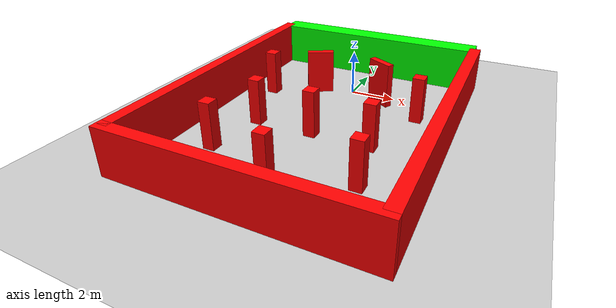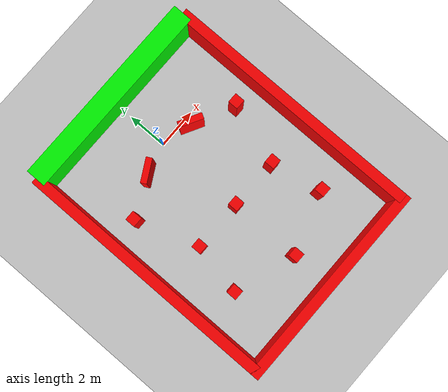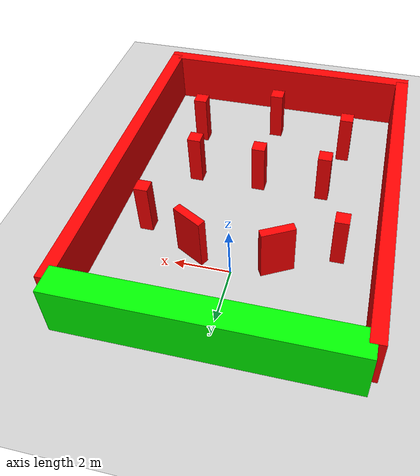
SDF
<?xml version="1.0" ?>
<sdf version="1.8">
  <world name="winteros_world">

    <physics name="1ms" type="ignored">
      <max_step_size>0.001</max_step_size>
      <real_time_factor>1.0</real_time_factor>
    </physics>

    <plugin filename="gz-sim-physics-system" name="gz::sim::systems::Physics" />
    <plugin filename="gz-sim-user-commands-system" name="gz::sim::systems::UserCommands" />
    <plugin filename="gz-sim-scene-broadcaster-system" name="gz::sim::systems::SceneBroadcaster" />
    <plugin filename="gz-sim-sensors-system" name="gz::sim::systems::Sensors">
      <render_engine>ogre2</render_engine>
    </plugin>

    <light type="directional" name="sun">
      <cast_shadows>true</cast_shadows>
      <pose>0 0 10 0 0 0</pose>
      <diffuse>0.8 0.8 0.8 1</diffuse>
      <specular>0.2 0.2 0.2 1</specular>
      <direction>-0.5 0.1 -0.9</direction>
    </light>

    <model name="ground_plane">
      <static>true</static>
      <link name="link">
        <collision name="collision">
          <geometry><plane><normal>0 0 1</normal><size>100 100</size></plane></geometry>
        </collision>
        <visual name="visual">
          <geometry><plane><normal>0 0 1</normal><size>100 100</size></plane></geometry>
          <material><ambient>0.8 0.8 0.8 1</ambient><diffuse>0.8 0.8 0.8 1</diffuse></material>
        </visual>
      </link>
    </model>

    <model name="wall_left"><static>true</static><pose>-5 -3.5 1 0 0 0</pose><link name="l"><collision name="c"><geometry><box><size>0.5 13 2</size></box></geometry></collision><visual name="v"><geometry><box><size>0.5 13 2</size></box></geometry><material><ambient>1 0 0 1</ambient><diffuse>1 0 0 1</diffuse></material></visual></link></model>
    <model name="wall_right"><static>true</static><pose>5 -3.5 1 0 0 0</pose><link name="l"><collision name="c"><geometry><box><size>0.5 13 2</size></box></geometry></collision><visual name="v"><geometry><box><size>0.5 13 2</size></box></geometry><material><ambient>1 0 0 1</ambient><diffuse>1 0 0 1</diffuse></material></visual></link></model>
    <model name="wall_back"><static>true</static><pose>0 -10 1 0 0 0</pose><link name="l"><collision name="c"><geometry><box><size>10.5 0.5 2</size></box></geometry></collision><visual name="v"><geometry><box><size>10.5 0.5 2</size></box></geometry><material><ambient>1 0 0 1</ambient><diffuse>1 0 0 1</diffuse></material></visual></link></model>
    <model name="box_f"><static>true</static><pose>0 3 1 0 0 0</pose><link name="l"><collision name="c"><geometry><box><size>10 1 2</size></box></geometry></collision><visual name="v"><geometry><box><size>10 1 2</size></box></geometry><material><ambient>0 1 0 1</ambient><diffuse>0 1 0 1</diffuse></material></visual></link></model>

    <model name="box1"><static>true</static><pose>0 -8 1 0 0 0</pose><link name="l"><collision name="c"><geometry><box><size>0.5 0.5 2</size></box></geometry></collision><visual name="v"><geometry><box><size>0.5 0.5 2</size></box></geometry><material><ambient>1 0 0 1</ambient><diffuse>1 0 0 1</diffuse></material></visual></link></model>
    <model name="box2"><static>true</static><pose>3 -7 1 0 0 0</pose><link name="l"><collision name="c"><geometry><box><size>0.5 0.5 2</size></box></geometry></collision><visual name="v"><geometry><box><size>0.5 0.5 2</size></box></geometry><material><ambient>1 0 0 1</ambient><diffuse>1 0 0 1</diffuse></material></visual></link></model>
    <model name="box3"><static>true</static><pose>-3 -7 1 0 0 0</pose><link name="l"><collision name="c"><geometry><box><size>0.5 0.5 2</size></box></geometry></collision><visual name="v"><geometry><box><size>0.5 0.5 2</size></box></geometry><material><ambient>1 0 0 1</ambient><diffuse>1 0 0 1</diffuse></material></visual></link></model>

    <model name="box5"><static>true</static><pose>0 -4.5 1 0 0 0</pose><link name="l"><collision name="c"><geometry><box><size>0.5 0.5 2</size></box></geometry></collision><visual name="v"><geometry><box><size>0.5 0.5 2</size></box></geometry><material><ambient>1 0 0 1</ambient><diffuse>1 0 0 1</diffuse></material></visual></link></model>
    <model name="box7"><static>true</static><pose>2.5 -4.5 1 0 0 0</pose><link name="l"><collision name="c"><geometry><box><size>0.5 0.5 2</size></box></geometry></collision><visual name="v"><geometry><box><size>0.5 0.5 2</size></box></geometry><material><ambient>1 0 0 1</ambient><diffuse>1 0 0 1</diffuse></material></visual></link></model>
    <model name="box9"><static>true</static><pose>-2.5 -4.5 1 0 0 0</pose><link name="l"><collision name="c"><geometry><box><size>0.5 0.5 2</size></box></geometry></collision><visual name="v"><geometry><box><size>0.5 0.5 2</size></box></geometry><material><ambient>1 0 0 1</ambient><diffuse>1 0 0 1</diffuse></material></visual></link></model>

    <model name="box10"><static>true</static><pose>-3.5 -1.5 1 0 0 0</pose><link name="l"><collision name="c"><geometry><box><size>0.5 0.5 2</size></box></geometry></collision><visual name="v"><geometry><box><size>0.5 0.5 2</size></box></geometry><material><ambient>1 0 0 1</ambient><diffuse>1 0 0 1</diffuse></material></visual></link></model>
    <model name="box13"><static>true</static><pose>3.5 -1.5 1 0 0 0</pose><link name="l"><collision name="c"><geometry><box><size>0.5 0.5 2</size></box></geometry></collision><visual name="v"><geometry><box><size>0.5 0.5 2</size></box></geometry><material><ambient>1 0 0 1</ambient><diffuse>1 0 0 1</diffuse></material></visual></link></model>

    <model name="box14"><static>true</static><pose>-1.5 -0.5 1 0 0 0.5</pose><link name="l"><collision name="c"><geometry><box><size>1.2 0.3 2</size></box></geometry></collision><visual name="v"><geometry><box><size>1.2 0.3 2</size></box></geometry><material><ambient>1 0 0 1</ambient><diffuse>1 0 0 1</diffuse></material></visual></link></model>
    <model name="box15"><static>true</static><pose>1.5 -0.5 1 0 0 -0.5</pose><link name="l"><collision name="c"><geometry><box><size>1.2 0.3 2</size></box></geometry></collision><visual name="v"><geometry><box><size>1.2 0.3 2</size></box></geometry><material><ambient>1 0 0 1</ambient><diffuse>1 0 0 1</diffuse></material></visual></link></model>

  </world>
</sdf>
